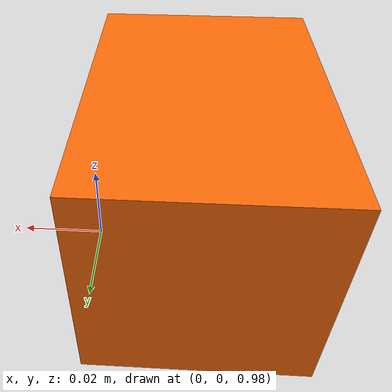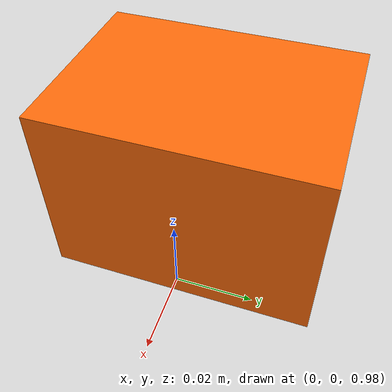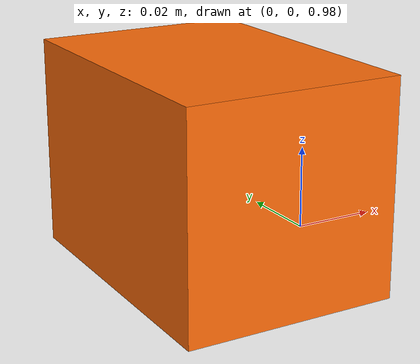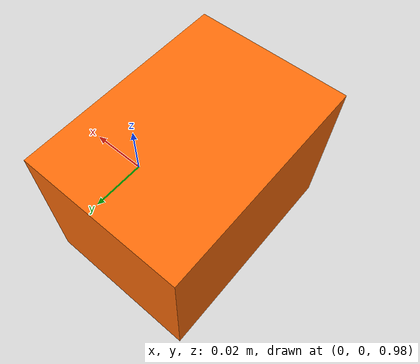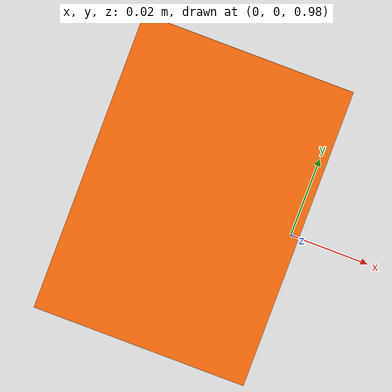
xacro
<?xml version="1.0"?>

<robot name="stereo_camera" xmlns:xacro="http://www.ros.org/wiki/xacro">

    <!-- camera -->
    <xacro:include filename="$(find sensor_sim_gazebo)/urdf/stereo_camera.gazebo.xacro"/>

    <xacro:property name="stereo_z" value="0.05" />
    <xacro:property name="stereo_y" value="0.07" />
    <xacro:property name="stereo_x" value="0.05" />
    <xacro:property name="object_height" value="1" />

    <!-- Used for fixing robot to Gazebo 'base_link' -->
    <link name="world"/>

    <!-- Base Link -->
    <link name="sensor_link">
        <collision>
            <origin xyz="-${stereo_z/2} 0 0" rpy="0 0 0"/>
            <geometry>
                <box size="${stereo_x} ${stereo_y} ${stereo_z}"/>
            </geometry>
        </collision>

        <visual>
            <origin xyz="-${stereo_x/2} 0 0" rpy="0 0 0"/>
            <geometry>
                <box size="${stereo_x} ${stereo_y} ${stereo_z}"/>
            </geometry>
            <material name="orange"/>
        </visual>

        <inertial>
            <origin xyz="0 0 0" rpy="0 0 0"/>
            <mass value="1"/>
            <inertia
                ixx="1.0" ixy="0.0" ixz="0.0"
                iyy="1.0" iyz="0.0"
                izz="1.0"/>
        </inertial>
    </link>

    <joint name="sensor_joint" type="fixed">
        <parent link="world"/>
        <child link="sensor_link"/>
        <origin xyz="0 0 ${object_height}" rpy="0 0 0" />
    </joint>

    <material name="orange">
        <color rgba="${255/255} ${108/255} ${10/255} 1.0"/>
    </material>

    <gazebo reference="sensor_link">
        <material>Gazebo/Black</material>
    </gazebo>

</robot>
